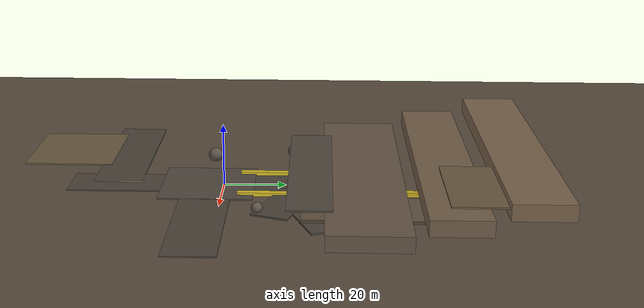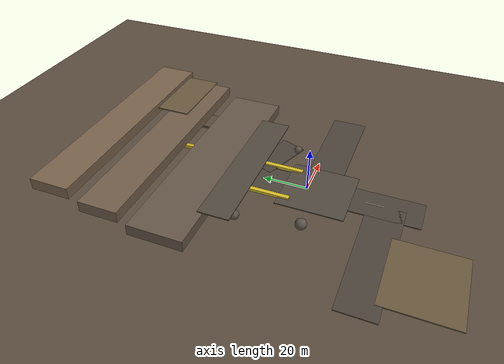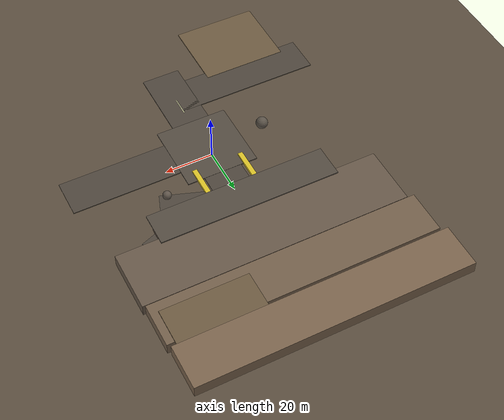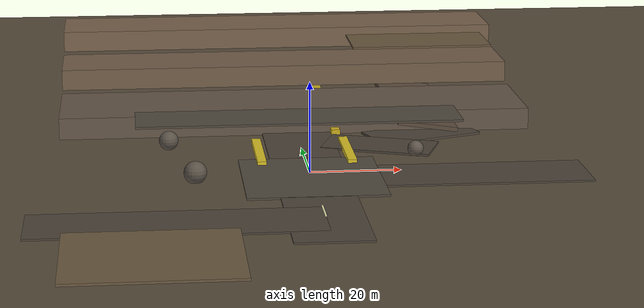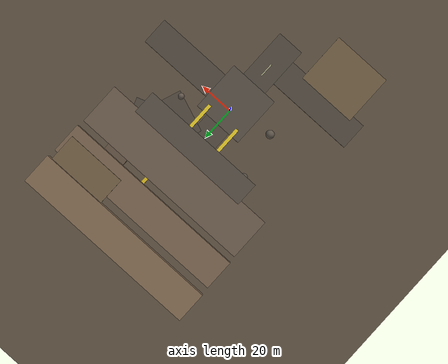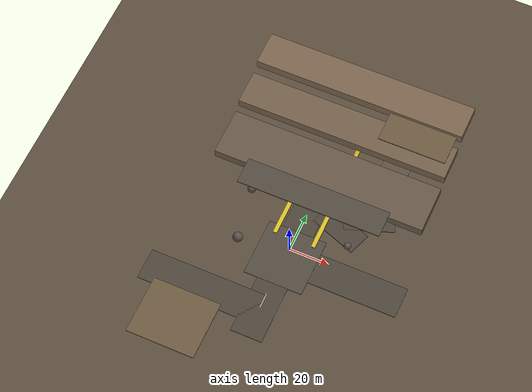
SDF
<?xml version="1.0" ?>
<sdf version="1.9">

  <world name="open_cast_mine">

    <!-- WORLD SETTINGS                                             -->

    <gravity>0 0 -9.81</gravity>

    <physics name="default_physics" type="ode">
      <max_step_size>0.001</max_step_size>
      <real_time_factor>1</real_time_factor>
      <real_time_update_rate>1000</real_time_update_rate>
    </physics>

    <!-- LIGHTING                                                   -->

    <light name="sun" type="directional">
      <cast_shadows>true</cast_shadows>
      <pose>0 0 120 0 0 0</pose>
      <diffuse>0.9 0.9 0.9 1</diffuse>
      <specular>0.3 0.3 0.3 1</specular>
      <direction>-0.5 0.4 -1</direction>
    </light>

    <!-- GROUND                                                     -->

    <model name="mine_ground">
      <static>true</static>

      <link name="ground_link">

        <collision name="ground_collision">
          <geometry>
            <box>
              <size>500 500 1</size>
            </box>
          </geometry>
          <pose>0 0 -0.5 0 0 0</pose>
        </collision>

        <visual name="ground_visual">
          <geometry>
            <box>
              <size>500 500 1</size>
            </box>
          </geometry>
          <pose>0 0 -0.5 0 0 0</pose>

          <material>
            <ambient>0.25 0.22 0.18 1</ambient>
            <diffuse>0.35 0.30 0.24 1</diffuse>
          </material>
        </visual>

      </link>
    </model>

    <!-- LOWER MINE BENCH                                           -->

    <model name="bench_lower">
      <static>true</static>

      <link name="bench_link">

        <collision name="collision">
          <geometry>
            <box>
              <size>110 25 5</size>
            </box>
          </geometry>
          <pose>0 45 2.5 0 0 0</pose>
        </collision>

        <visual name="visual">
          <geometry>
            <box>
              <size>110 25 5</size>
            </box>
          </geometry>
          <pose>0 45 2.5 0 0 0</pose>

          <material>
            <ambient>0.28 0.24 0.20 1</ambient>
            <diffuse>0.40 0.34 0.28 1</diffuse>
          </material>
        </visual>

      </link>
    </model>

    <!-- MIDDLE MINE BENCH                                          -->

    <model name="bench_middle">
      <static>true</static>

      <link name="bench_link">

        <collision name="collision">
          <geometry>
            <box>
              <size>110 18 5</size>
            </box>
          </geometry>
          <pose>0 70 7.5 0 0 0</pose>
        </collision>

        <visual name="visual">
          <geometry>
            <box>
              <size>110 18 5</size>
            </box>
          </geometry>
          <pose>0 70 7.5 0 0 0</pose>

          <material>
            <ambient>0.32 0.27 0.21 1</ambient>
            <diffuse>0.45 0.37 0.29 1</diffuse>
          </material>
        </visual>

      </link>
    </model>

    <!-- UPPER MINE BENCH                                           -->

    <model name="bench_upper">
      <static>true</static>

      <link name="bench_link">

        <collision name="collision">
          <geometry>
            <box>
              <size>110 18 5</size>
            </box>
          </geometry>
          <pose>0 92 12.5 0 0 0</pose>
        </collision>

        <visual name="visual">
          <geometry>
            <box>
              <size>110 18 5</size>
            </box>
          </geometry>
          <pose>0 92 12.5 0 0 0</pose>

          <material>
            <ambient>0.35 0.29 0.22 1</ambient>
            <diffuse>0.48 0.39 0.30 1</diffuse>
          </material>
        </visual>

      </link>
    </model>

    <!-- MAIN HAUL ROAD                                             -->

    <model name="haul_road_main">
      <static>true</static>

      <link name="road_link">

        <collision name="collision">
          <geometry>
            <box>
              <size>16 100 0.4</size>
            </box>
          </geometry>
          <pose>0 0 0.2 0 0 0</pose>
        </collision>

        <visual name="visual">
          <geometry>
            <box>
              <size>16 100 0.4</size>
            </box>
          </geometry>
          <pose>0 0 0.2 0 0 0</pose>

          <material>
            <ambient>0.20 0.18 0.15 1</ambient>
            <diffuse>0.30 0.27 0.23 1</diffuse>
          </material>
        </visual>

      </link>
    </model>

    <!-- WEST HAUL ROAD                                             -->

    <model name="haul_road_west">
      <static>true</static>

      <link name="road_link">

        <collision name="collision">
          <geometry>
            <box>
              <size>60 16 0.4</size>
            </box>
          </geometry>
          <pose>-30 -35 0.2 0 0 0</pose>
        </collision>

        <visual name="visual">
          <geometry>
            <box>
              <size>60 16 0.4</size>
            </box>
          </geometry>
          <pose>-30 -35 0.2 0 0 0</pose>

          <material>
            <ambient>0.20 0.18 0.15 1</ambient>
            <diffuse>0.30 0.27 0.23 1</diffuse>
          </material>
        </visual>

      </link>
    </model>

    <!-- EAST HAUL ROAD                                             -->

    <model name="haul_road_east">
      <static>true</static>

      <link name="road_link">

        <collision name="collision">
          <geometry>
            <box>
              <size>60 16 0.4</size>
            </box>
          </geometry>
          <pose>30 -5 0.2 0 0 0</pose>
        </collision>

        <visual name="visual">
          <geometry>
            <box>
              <size>60 16 0.4</size>
            </box>
          </geometry>
          <pose>30 -5 0.2 0 0 0</pose>

          <material>
            <ambient>0.20 0.18 0.15 1</ambient>
            <diffuse>0.30 0.27 0.23 1</diffuse>
          </material>
        </visual>

      </link>
    </model>

    <!-- UPPER CONNECTING ROAD                                      -->

    <model name="upper_haul_road">
      <static>true</static>

      <link name="road_link">

        <collision name="collision">
          <geometry>
            <box>
              <size>75 14 0.5</size>
            </box>
          </geometry>
          <pose>0 28 5.3 0 0 0</pose>
        </collision>

        <visual name="visual">
          <geometry>
            <box>
              <size>75 14 0.5</size>
            </box>
          </geometry>
          <pose>0 28 5.3 0 0 0</pose>

          <material>
            <ambient>0.22 0.19 0.16 1</ambient>
            <diffuse>0.32 0.29 0.25 1</diffuse>
          </material>
        </visual>

      </link>
    </model>

    <!-- RAMP TO UPPER BENCH                                        -->

    <model name="mine_ramp">
      <static>true</static>

      <link name="ramp_link">

        <collision name="collision">
          <geometry>
            <box>
              <size>14 45 1</size>
            </box>
          </geometry>

          <pose>30 48 3.0 0 0.14 0</pose>
        </collision>

        <visual name="visual">
          <geometry>
            <box>
              <size>14 45 1</size>
            </box>
          </geometry>

          <pose>30 48 3.0 0 0.14 0</pose>

          <material>
            <ambient>0.25 0.21 0.17 1</ambient>
            <diffuse>0.36 0.30 0.24 1</diffuse>
          </material>
        </visual>

      </link>
    </model>

    <!-- LOADING AREA                                               -->

    <model name="loading_area">
      <static>true</static>

      <link name="loading_link">

        <collision name="collision">
          <geometry>
            <box>
              <size>35 30 0.5</size>
            </box>
          </geometry>
          <pose>-35 -55 0.25 0 0 0</pose>
        </collision>

        <visual name="visual">
          <geometry>
            <box>
              <size>35 30 0.5</size>
            </box>
          </geometry>
          <pose>-35 -55 0.25 0 0 0</pose>

          <material>
            <ambient>0.30 0.25 0.18 1</ambient>
            <diffuse>0.42 0.35 0.25 1</diffuse>
          </material>
        </visual>

      </link>
    </model>

    <!-- DUMPING AREA                                               -->

    <model name="dumping_area">
      <static>true</static>

      <link name="dump_link">

        <collision name="collision">
          <geometry>
            <box>
              <size>35 30 0.5</size>
            </box>
          </geometry>
          <pose>35 82 12.8 0 0 0</pose>
        </collision>

        <visual name="visual">
          <geometry>
            <box>
              <size>35 30 0.5</size>
            </box>
          </geometry>
          <pose>35 82 12.8 0 0 0</pose>

          <material>
            <ambient>0.30 0.25 0.18 1</ambient>
            <diffuse>0.42 0.35 0.25 1</diffuse>
          </material>
        </visual>

      </link>
    </model>

    <!-- BLIND CURVE SECTION                                        -->

    <model name="blind_curve_1">
      <static>true</static>

      <link name="road_link">

        <collision name="collision">
          <geometry>
            <box>
              <size>25 12 0.5</size>
            </box>
          </geometry>

          <pose>18 20 0.25 0 0 -0.35</pose>
        </collision>

        <visual name="visual">
          <geometry>
            <box>
              <size>25 12 0.5</size>
            </box>
          </geometry>

          <pose>18 20 0.25 0 0 -0.35</pose>

          <material>
            <ambient>0.20 0.18 0.15 1</ambient>
            <diffuse>0.30 0.27 0.23 1</diffuse>
          </material>
        </visual>

      </link>
    </model>

    <model name="blind_curve_2">
      <static>true</static>

      <link name="road_link">

        <collision name="collision">
          <geometry>
            <box>
              <size>25 12 0.5</size>
            </box>
          </geometry>

          <pose>29 30 0.25 0 0 0.35</pose>
        </collision>

        <visual name="visual">
          <geometry>
            <box>
              <size>25 12 0.5</size>
            </box>
          </geometry>

          <pose>29 30 0.25 0 0 0.35</pose>

          <material>
            <ambient>0.20 0.18 0.15 1</ambient>
            <diffuse>0.30 0.27 0.23 1</diffuse>
          </material>
        </visual>

      </link>
    </model>

    <!-- INTERSECTION                                               -->

    <model name="mine_intersection">
      <static>true</static>

      <link name="intersection_link">

        <collision name="collision">
          <geometry>
            <box>
              <size>30 30 0.45</size>
            </box>
          </geometry>
          <pose>0 -5 0.225 0 0 0</pose>
        </collision>

        <visual name="visual">
          <geometry>
            <box>
              <size>30 30 0.45</size>
            </box>
          </geometry>
          <pose>0 -5 0.225 0 0 0</pose>

          <material>
            <ambient>0.22 0.20 0.17 1</ambient>
            <diffuse>0.32 0.29 0.25 1</diffuse>
          </material>
        </visual>

      </link>
    </model>

    <!-- ROCK OBSTACLE 1                                            -->

    <model name="rock_01">
      <static>true</static>

      <pose>-25 -5 2 0 0 0</pose>

      <link name="rock_link">

        <collision name="collision">
          <geometry>
            <sphere>
              <radius>2.5</radius>
            </sphere>
          </geometry>
        </collision>

        <visual name="visual">
          <geometry>
            <sphere>
              <radius>2.5</radius>
            </sphere>
          </geometry>

          <material>
            <ambient>0.25 0.23 0.20 1</ambient>
            <diffuse>0.35 0.32 0.28 1</diffuse>
          </material>
        </visual>

      </link>
    </model>

    <!-- ROCK OBSTACLE 2                                            -->

    <model name="rock_02">
      <static>true</static>

      <pose>25 12 1.5 0 0 0</pose>

      <link name="rock_link">

        <collision name="collision">
          <geometry>
            <sphere>
              <radius>1.8</radius>
            </sphere>
          </geometry>
        </collision>

        <visual name="visual">
          <geometry>
            <sphere>
              <radius>1.8</radius>
            </sphere>
          </geometry>

          <material>
            <ambient>0.27 0.24 0.21 1</ambient>
            <diffuse>0.37 0.33 0.29 1</diffuse>
          </material>
        </visual>

      </link>
    </model>

    <!-- ROCK OBSTACLE 3                                            -->

    <model name="rock_03">
      <static>true</static>

      <pose>-30 22 2 0 0 0</pose>

      <link name="rock_link">

        <collision name="collision">
          <geometry>
            <sphere>
              <radius>2.2</radius>
            </sphere>
          </geometry>
        </collision>

        <visual name="visual">
          <geometry>
            <sphere>
              <radius>2.2</radius>
            </sphere>
          </geometry>

          <material>
            <ambient>0.25 0.23 0.20 1</ambient>
            <diffuse>0.35 0.32 0.28 1</diffuse>
          </material>
        </visual>

      </link>
    </model>

    <!-- SAFETY BARRIER 1                                           -->

    <model name="barrier_01">
      <static>true</static>

      <link name="barrier_link">

        <collision name="collision">
          <geometry>
            <box>
              <size>2 20 1.2</size>
            </box>
          </geometry>
          <pose>-10 15 0.6 0 0 0</pose>
        </collision>

        <visual name="visual">
          <geometry>
            <box>
              <size>2 20 1.2</size>
            </box>
          </geometry>
          <pose>-10 15 0.6 0 0 0</pose>

          <material>
            <ambient>0.75 0.65 0.10 1</ambient>
            <diffuse>0.85 0.75 0.15 1</diffuse>
          </material>
        </visual>

      </link>
    </model>

    <!-- SAFETY BARRIER 2                                           -->

    <model name="barrier_02">
      <static>true</static>

      <link name="barrier_link">

        <collision name="collision">
          <geometry>
            <box>
              <size>2 20 1.2</size>
            </box>
          </geometry>
          <pose>10 15 0.6 0 0 0</pose>
        </collision>

        <visual name="visual">
          <geometry>
            <box>
              <size>2 20 1.2</size>
            </box>
          </geometry>
          <pose>10 15 0.6 0 0 0</pose>

          <material>
            <ambient>0.75 0.65 0.10 1</ambient>
            <diffuse>0.85 0.75 0.15 1</diffuse>
          </material>
        </visual>

      </link>
    </model>

    <!-- ROAD EDGE BARRIER                                         -->

    <model name="road_edge_barrier">
      <static>true</static>

      <link name="barrier_link">

        <collision name="collision">
          <geometry>
            <box>
              <size>2 50 1.5</size>
            </box>
          </geometry>
          <pose>9 55 0.75 0 0 0</pose>
        </collision>

        <visual name="visual">
          <geometry>
            <box>
              <size>2 50 1.5</size>
            </box>
          </geometry>
          <pose>9 55 0.75 0 0 0</pose>

          <material>
            <ambient>0.65 0.55 0.08 1</ambient>
            <diffuse>0.80 0.68 0.12 1</diffuse>
          </material>
        </visual>

      </link>
    </model>

    <!-- TRUCK TEST SPAWN MARKER                                   -->

    <model name="truck_spawn_marker">
      <static>true</static>

      <link name="marker_link">

        <visual name="visual">
          <geometry>
            <box>
              <size>10 4 0.05</size>
            </box>
          </geometry>
          <pose>-35 -35 0.03 0 0 0</pose>

          <material>
            <ambient>0.10 0.60 0.10 1</ambient>
            <diffuse>0.10 0.80 0.10 1</diffuse>
          </material>
        </visual>

      </link>
    </model>

    <!-- DIRECTIONAL ROAD MARKER                                   -->

    <model name="road_marker_01">
      <static>true</static>

      <link name="marker_link">

        <visual name="visual">
          <geometry>
            <box>
              <size>0.4 8 0.03</size>
            </box>
          </geometry>

          <pose>0 -30 0.42 0 0 0</pose>

          <material>
            <ambient>0.9 0.9 0.7 1</ambient>
            <diffuse>0.9 0.9 0.7 1</diffuse>
          </material>
        </visual>

      </link>
    </model>

    <!-- SECOND ROAD MARKER                                        -->

    <model name="road_marker_02">
      <static>true</static>

      <link name="marker_link">

        <visual name="visual">
          <geometry>
            <box>
              <size>0.4 8 0.03</size>
            </box>
          </geometry>

          <pose>0 -15 0.42 0 0 0</pose>

          <material>
            <ambient>0.9 0.9 0.7 1</ambient>
            <diffuse>0.9 0.9 0.7 1</diffuse>
          </material>
        </visual>

      </link>
    </model>

    <!-- THIRD ROAD MARKER                                         -->

    <model name="road_marker_03">
      <static>true</static>

      <link name="marker_link">

        <visual name="visual">
          <geometry>
            <box>
              <size>0.4 8 0.03</size>
            </box>
          </geometry>

          <pose>0 5 0.42 0 0 0</pose>

          <material>
            <ambient>0.9 0.9 0.7 1</ambient>
            <diffuse>0.9 0.9 0.7 1</diffuse>
          </material>
        </visual>

      </link>
    </model>

  </world>

</sdf>
